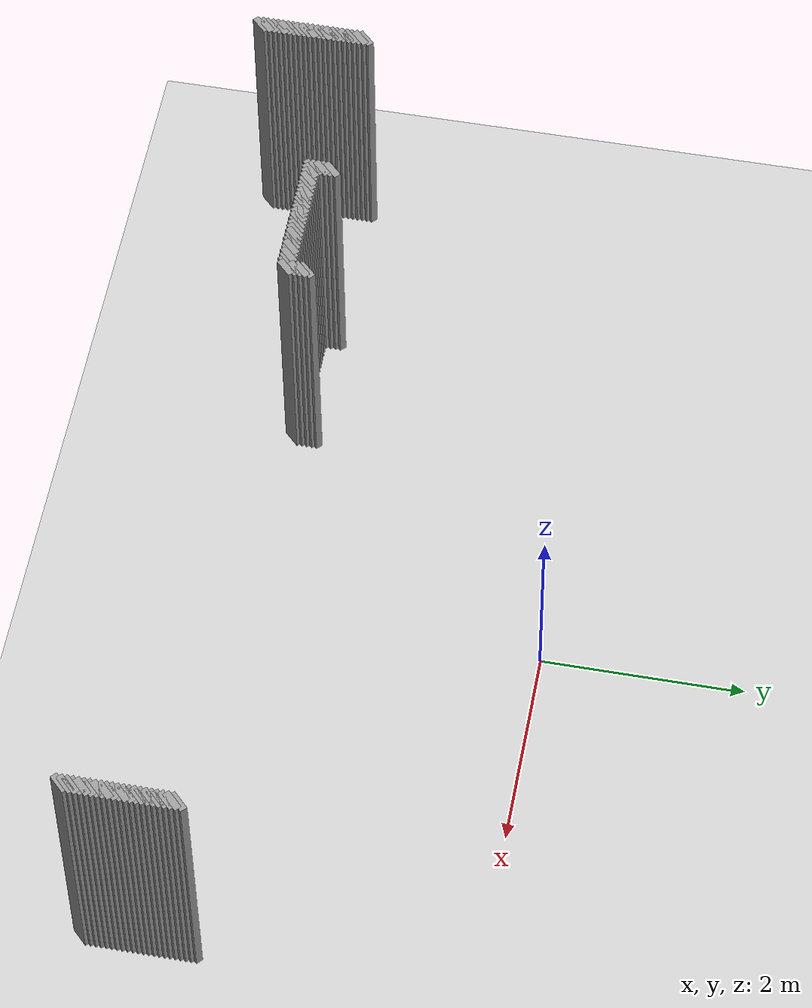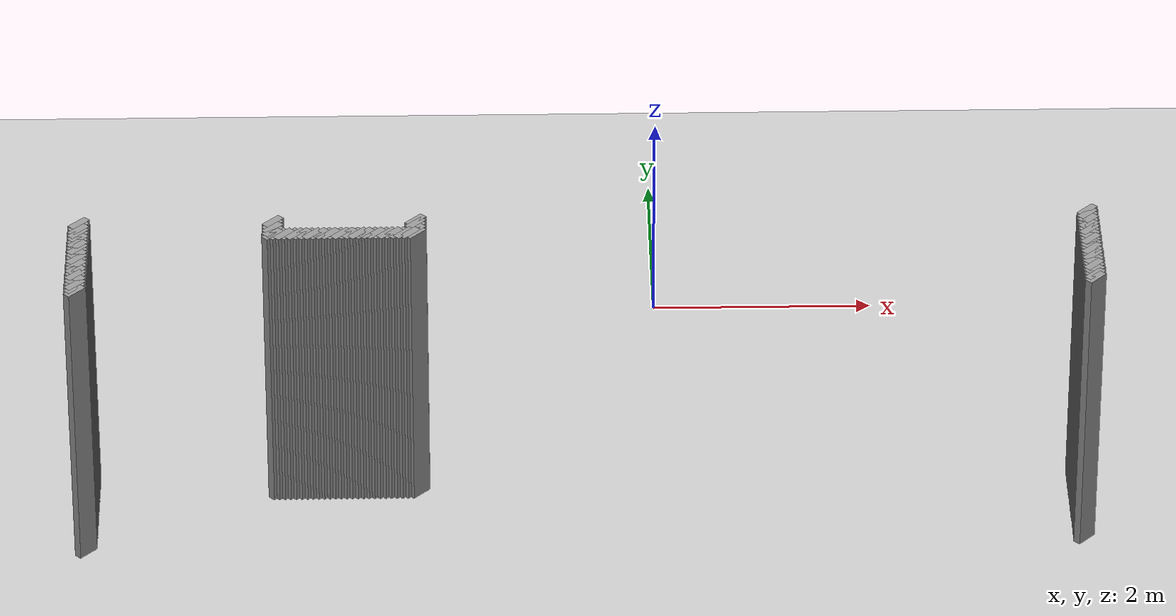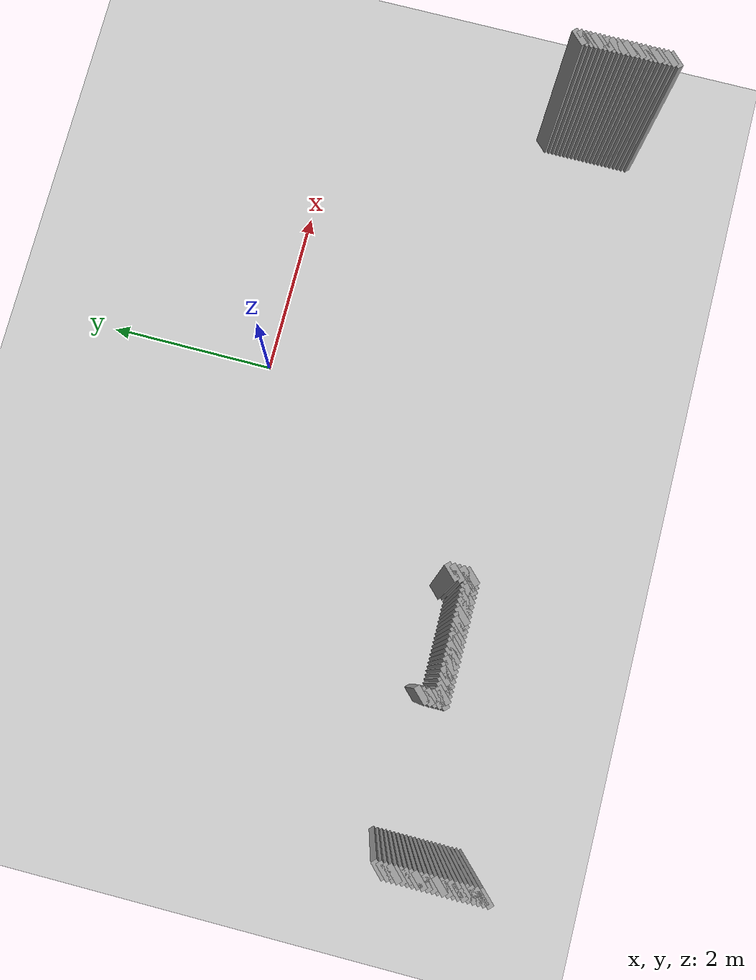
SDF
<sdf version="1.5">
 <world name="default">
  <include><uri>model://ground_plane</uri></include>
  <include><uri>model://sun</uri></include>
  <model name="grey_wall_1100">
   <static>1</static>
   <link name="link">
    <pose>3.725 -2.625  1.4 0 0 -0.785398163397</pose>
    <collision name="collision"><geometry><box><size>0.0707106781187 .2  2.8</size></box></geometry></collision>
    <visual name="visual">
     <cast_shadows>0</cast_shadows>
     <geometry><box><size>0.0707106781187 .2  2.8</size></box></geometry>
     <material>
      <script>
       <uri>model://grey_wall/materials/scripts</uri>
       <uri>model://grey_wall/materials/textures</uri>
       <name>vrc/grey_wall</name>
      </script>
     </material>
    </visual>
   </link>
  </model>
  <model name="grey_wall_1101">
   <static>1</static>
   <link name="link">
    <pose>-5.125 -2.675  1.4 0 0 -0.785398163397</pose>
    <collision name="collision"><geometry><box><size>0.0707106781187 .2  2.8</size></box></geometry></collision>
    <visual name="visual">
     <cast_shadows>0</cast_shadows>
     <geometry><box><size>0.0707106781187 .2  2.8</size></box></geometry>
     <material>
      <script>
       <uri>model://grey_wall/materials/scripts</uri>
       <uri>model://grey_wall/materials/textures</uri>
       <name>vrc/grey_wall</name>
      </script>
     </material>
    </visual>
   </link>
  </model>
  <model name="grey_wall_1102">
   <static>1</static>
   <link name="link">
    <pose>-3.425 -2.675  1.4 0 0 -0.785398163397</pose>
    <collision name="collision"><geometry><box><size>0.0707106781187 .2  2.8</size></box></geometry></collision>
    <visual name="visual">
     <cast_shadows>0</cast_shadows>
     <geometry><box><size>0.0707106781187 .2  2.8</size></box></geometry>
     <material>
      <script>
       <uri>model://grey_wall/materials/scripts</uri>
       <uri>model://grey_wall/materials/textures</uri>
       <name>vrc/grey_wall</name>
      </script>
     </material>
    </visual>
   </link>
  </model>
  <model name="grey_wall_1103">
   <static>1</static>
   <link name="link">
    <pose>-2.175 -2.675  1.4 0 0 -0.785398163397</pose>
    <collision name="collision"><geometry><box><size>0.0707106781187 .2  2.8</size></box></geometry></collision>
    <visual name="visual">
     <cast_shadows>0</cast_shadows>
     <geometry><box><size>0.0707106781187 .2  2.8</size></box></geometry>
     <material>
      <script>
       <uri>model://grey_wall/materials/scripts</uri>
       <uri>model://grey_wall/materials/textures</uri>
       <name>vrc/grey_wall</name>
      </script>
     </material>
    </visual>
   </link>
  </model>
  <model name="grey_wall_1104">
   <static>1</static>
   <link name="link">
    <pose>3.725 -2.675  1.4 0 0 -0.785398163397</pose>
    <collision name="collision"><geometry><box><size>0.0707106781187 .2  2.8</size></box></geometry></collision>
    <visual name="visual">
     <cast_shadows>0</cast_shadows>
     <geometry><box><size>0.0707106781187 .2  2.8</size></box></geometry>
     <material>
      <script>
       <uri>model://grey_wall/materials/scripts</uri>
       <uri>model://grey_wall/materials/textures</uri>
       <name>vrc/grey_wall</name>
      </script>
     </material>
    </visual>
   </link>
  </model>
  <model name="grey_wall_1105">
   <static>1</static>
   <link name="link">
    <pose>-5.125 -2.725  1.4 0 0 -0.785398163397</pose>
    <collision name="collision"><geometry><box><size>0.0707106781187 .2  2.8</size></box></geometry></collision>
    <visual name="visual">
     <cast_shadows>0</cast_shadows>
     <geometry><box><size>0.0707106781187 .2  2.8</size></box></geometry>
     <material>
      <script>
       <uri>model://grey_wall/materials/scripts</uri>
       <uri>model://grey_wall/materials/textures</uri>
       <name>vrc/grey_wall</name>
      </script>
     </material>
    </visual>
   </link>
  </model>
  <model name="grey_wall_1106">
   <static>1</static>
   <link name="link">
    <pose>-3.425 -2.725  1.4 0 0 -0.785398163397</pose>
    <collision name="collision"><geometry><box><size>0.0707106781187 .2  2.8</size></box></geometry></collision>
    <visual name="visual">
     <cast_shadows>0</cast_shadows>
     <geometry><box><size>0.0707106781187 .2  2.8</size></box></geometry>
     <material>
      <script>
       <uri>model://grey_wall/materials/scripts</uri>
       <uri>model://grey_wall/materials/textures</uri>
       <name>vrc/grey_wall</name>
      </script>
     </material>
    </visual>
   </link>
  </model>
  <model name="grey_wall_1107">
   <static>1</static>
   <link name="link">
    <pose>-2.175 -2.725  1.4 0 0 -0.785398163397</pose>
    <collision name="collision"><geometry><box><size>0.0707106781187 .2  2.8</size></box></geometry></collision>
    <visual name="visual">
     <cast_shadows>0</cast_shadows>
     <geometry><box><size>0.0707106781187 .2  2.8</size></box></geometry>
     <material>
      <script>
       <uri>model://grey_wall/materials/scripts</uri>
       <uri>model://grey_wall/materials/textures</uri>
       <name>vrc/grey_wall</name>
      </script>
     </material>
    </visual>
   </link>
  </model>
  <model name="grey_wall_1108">
   <static>1</static>
   <link name="link">
    <pose>3.725 -2.725  1.4 0 0 -0.785398163397</pose>
    <collision name="collision"><geometry><box><size>0.0707106781187 .2  2.8</size></box></geometry></collision>
    <visual name="visual">
     <cast_shadows>0</cast_shadows>
     <geometry><box><size>0.0707106781187 .2  2.8</size></box></geometry>
     <material>
      <script>
       <uri>model://grey_wall/materials/scripts</uri>
       <uri>model://grey_wall/materials/textures</uri>
       <name>vrc/grey_wall</name>
      </script>
     </material>
    </visual>
   </link>
  </model>
  <model name="grey_wall_1109">
   <static>1</static>
   <link name="link">
    <pose>-5.125 -2.775  1.4 0 0 -0.785398163397</pose>
    <collision name="collision"><geometry><box><size>0.0707106781187 .2  2.8</size></box></geometry></collision>
    <visual name="visual">
     <cast_shadows>0</cast_shadows>
     <geometry><box><size>0.0707106781187 .2  2.8</size></box></geometry>
     <material>
      <script>
       <uri>model://grey_wall/materials/scripts</uri>
       <uri>model://grey_wall/materials/textures</uri>
       <name>vrc/grey_wall</name>
      </script>
     </material>
    </visual>
   </link>
  </model>
  <model name="grey_wall_1110">
   <static>1</static>
   <link name="link">
    <pose>-3.425 -2.775  1.4 0 0 -0.785398163397</pose>
    <collision name="collision"><geometry><box><size>0.0707106781187 .2  2.8</size></box></geometry></collision>
    <visual name="visual">
     <cast_shadows>0</cast_shadows>
     <geometry><box><size>0.0707106781187 .2  2.8</size></box></geometry>
     <material>
      <script>
       <uri>model://grey_wall/materials/scripts</uri>
       <uri>model://grey_wall/materials/textures</uri>
       <name>vrc/grey_wall</name>
      </script>
     </material>
    </visual>
   </link>
  </model>
  <model name="grey_wall_1111">
   <static>1</static>
   <link name="link">
    <pose>-2.175 -2.775  1.4 0 0 -0.785398163397</pose>
    <collision name="collision"><geometry><box><size>0.0707106781187 .2  2.8</size></box></geometry></collision>
    <visual name="visual">
     <cast_shadows>0</cast_shadows>
     <geometry><box><size>0.0707106781187 .2  2.8</size></box></geometry>
     <material>
      <script>
       <uri>model://grey_wall/materials/scripts</uri>
       <uri>model://grey_wall/materials/textures</uri>
       <name>vrc/grey_wall</name>
      </script>
     </material>
    </visual>
   </link>
  </model>
  <model name="grey_wall_1112">
   <static>1</static>
   <link name="link">
    <pose>3.725 -2.775  1.4 0 0 -0.785398163397</pose>
    <collision name="collision"><geometry><box><size>0.0707106781187 .2  2.8</size></box></geometry></collision>
    <visual name="visual">
     <cast_shadows>0</cast_shadows>
     <geometry><box><size>0.0707106781187 .2  2.8</size></box></geometry>
     <material>
      <script>
       <uri>model://grey_wall/materials/scripts</uri>
       <uri>model://grey_wall/materials/textures</uri>
       <name>vrc/grey_wall</name>
      </script>
     </material>
    </visual>
   </link>
  </model>
  <model name="grey_wall_1113">
   <static>1</static>
   <link name="link">
    <pose>-5.125 -2.825  1.4 0 0 -0.785398163397</pose>
    <collision name="collision"><geometry><box><size>0.0707106781187 .2  2.8</size></box></geometry></collision>
    <visual name="visual">
     <cast_shadows>0</cast_shadows>
     <geometry><box><size>0.0707106781187 .2  2.8</size></box></geometry>
     <material>
      <script>
       <uri>model://grey_wall/materials/scripts</uri>
       <uri>model://grey_wall/materials/textures</uri>
       <name>vrc/grey_wall</name>
      </script>
     </material>
    </visual>
   </link>
  </model>
  <model name="grey_wall_1114">
   <static>1</static>
   <link name="link">
    <pose>-3.425 -2.825  1.4 0 0 -0.785398163397</pose>
    <collision name="collision"><geometry><box><size>0.0707106781187 .2  2.8</size></box></geometry></collision>
    <visual name="visual">
     <cast_shadows>0</cast_shadows>
     <geometry><box><size>0.0707106781187 .2  2.8</size></box></geometry>
     <material>
      <script>
       <uri>model://grey_wall/materials/scripts</uri>
       <uri>model://grey_wall/materials/textures</uri>
       <name>vrc/grey_wall</name>
      </script>
     </material>
    </visual>
   </link>
  </model>
  <model name="grey_wall_1115">
   <static>1</static>
   <link name="link">
    <pose>-2.175 -2.825  1.4 0 0 -0.785398163397</pose>
    <collision name="collision"><geometry><box><size>0.0707106781187 .2  2.8</size></box></geometry></collision>
    <visual name="visual">
     <cast_shadows>0</cast_shadows>
     <geometry><box><size>0.0707106781187 .2  2.8</size></box></geometry>
     <material>
      <script>
       <uri>model://grey_wall/materials/scripts</uri>
       <uri>model://grey_wall/materials/textures</uri>
       <name>vrc/grey_wall</name>
      </script>
     </material>
    </visual>
   </link>
  </model>
  <model name="grey_wall_1116">
   <static>1</static>
   <link name="link">
    <pose>3.725 -2.825  1.4 0 0 -0.785398163397</pose>
    <collision name="collision"><geometry><box><size>0.0707106781187 .2  2.8</size></box></geometry></collision>
    <visual name="visual">
     <cast_shadows>0</cast_shadows>
     <geometry><box><size>0.0707106781187 .2  2.8</size></box></geometry>
     <material>
      <script>
       <uri>model://grey_wall/materials/scripts</uri>
       <uri>model://grey_wall/materials/textures</uri>
       <name>vrc/grey_wall</name>
      </script>
     </material>
    </visual>
   </link>
  </model>
  <model name="grey_wall_1117">
   <static>1</static>
   <link name="link">
    <pose>-5.125 -2.875  1.4 0 0 -0.785398163397</pose>
    <collision name="collision"><geometry><box><size>0.0707106781187 .2  2.8</size></box></geometry></collision>
    <visual name="visual">
     <cast_shadows>0</cast_shadows>
     <geometry><box><size>0.0707106781187 .2  2.8</size></box></geometry>
     <material>
      <script>
       <uri>model://grey_wall/materials/scripts</uri>
       <uri>model://grey_wall/materials/textures</uri>
       <name>vrc/grey_wall</name>
      </script>
     </material>
    </visual>
   </link>
  </model>
  <model name="grey_wall_1118">
   <static>1</static>
   <link name="link">
    <pose>-3.425 -2.875  1.4 0 0 -0.785398163397</pose>
    <collision name="collision"><geometry><box><size>0.0707106781187 .2  2.8</size></box></geometry></collision>
    <visual name="visual">
     <cast_shadows>0</cast_shadows>
     <geometry><box><size>0.0707106781187 .2  2.8</size></box></geometry>
     <material>
      <script>
       <uri>model://grey_wall/materials/scripts</uri>
       <uri>model://grey_wall/materials/textures</uri>
       <name>vrc/grey_wall</name>
      </script>
     </material>
    </visual>
   </link>
  </model>
  <model name="grey_wall_1119">
   <static>1</static>
   <link name="link">
    <pose>-3.375 -2.875  1.4 0 0 -0.785398163397</pose>
    <collision name="collision"><geometry><box><size>0.0707106781187 .2  2.8</size></box></geometry></collision>
    <visual name="visual">
     <cast_shadows>0</cast_shadows>
     <geometry><box><size>0.0707106781187 .2  2.8</size></box></geometry>
     <material>
      <script>
       <uri>model://grey_wall/materials/scripts</uri>
       <uri>model://grey_wall/materials/textures</uri>
       <name>vrc/grey_wall</name>
      </script>
     </material>
    </visual>
   </link>
  </model>
  <model name="grey_wall_1120">
   <static>1</static>
   <link name="link">
    <pose>-3.325 -2.875  1.4 0 0 -0.785398163397</pose>
    <collision name="collision"><geometry><box><size>0.0707106781187 .2  2.8</size></box></geometry></collision>
    <visual name="visual">
     <cast_shadows>0</cast_shadows>
     <geometry><box><size>0.0707106781187 .2  2.8</size></box></geometry>
     <material>
      <script>
       <uri>model://grey_wall/materials/scripts</uri>
       <uri>model://grey_wall/materials/textures</uri>
       <name>vrc/grey_wall</name>
      </script>
     </material>
    </visual>
   </link>
  </model>
  <model name="grey_wall_1121">
   <static>1</static>
   <link name="link">
    <pose>-3.275 -2.875  1.4 0 0 -0.785398163397</pose>
    <collision name="collision"><geometry><box><size>0.0707106781187 .2  2.8</size></box></geometry></collision>
    <visual name="visual">
     <cast_shadows>0</cast_shadows>
     <geometry><box><size>0.0707106781187 .2  2.8</size></box></geometry>
     <material>
      <script>
       <uri>model://grey_wall/materials/scripts</uri>
       <uri>model://grey_wall/materials/textures</uri>
       <name>vrc/grey_wall</name>
      </script>
     </material>
    </visual>
   </link>
  </model>
  <model name="grey_wall_1122">
   <static>1</static>
   <link name="link">
    <pose>-3.225 -2.875  1.4 0 0 -0.785398163397</pose>
    <collision name="collision"><geometry><box><size>0.0707106781187 .2  2.8</size></box></geometry></collision>
    <visual name="visual">
     <cast_shadows>0</cast_shadows>
     <geometry><box><size>0.0707106781187 .2  2.8</size></box></geometry>
     <material>
      <script>
       <uri>model://grey_wall/materials/scripts</uri>
       <uri>model://grey_wall/materials/textures</uri>
       <name>vrc/grey_wall</name>
      </script>
     </material>
    </visual>
   </link>
  </model>
  <model name="grey_wall_1123">
   <static>1</static>
   <link name="link">
    <pose>-3.175 -2.875  1.4 0 0 -0.785398163397</pose>
    <collision name="collision"><geometry><box><size>0.0707106781187 .2  2.8</size></box></geometry></collision>
    <visual name="visual">
     <cast_shadows>0</cast_shadows>
     <geometry><box><size>0.0707106781187 .2  2.8</size></box></geometry>
     <material>
      <script>
       <uri>model://grey_wall/materials/scripts</uri>
       <uri>model://grey_wall/materials/textures</uri>
       <name>vrc/grey_wall</name>
      </script>
     </material>
    </visual>
   </link>
  </model>
  <model name="grey_wall_1124">
   <static>1</static>
   <link name="link">
    <pose>-3.125 -2.875  1.4 0 0 -0.785398163397</pose>
    <collision name="collision"><geometry><box><size>0.0707106781187 .2  2.8</size></box></geometry></collision>
    <visual name="visual">
     <cast_shadows>0</cast_shadows>
     <geometry><box><size>0.0707106781187 .2  2.8</size></box></geometry>
     <material>
      <script>
       <uri>model://grey_wall/materials/scripts</uri>
       <uri>model://grey_wall/materials/textures</uri>
       <name>vrc/grey_wall</name>
      </script>
     </material>
    </visual>
   </link>
  </model>
  <model name="grey_wall_1125">
   <static>1</static>
   <link name="link">
    <pose>-3.075 -2.875  1.4 0 0 -0.785398163397</pose>
    <collision name="collision"><geometry><box><size>0.0707106781187 .2  2.8</size></box></geometry></collision>
    <visual name="visual">
     <cast_shadows>0</cast_shadows>
     <geometry><box><size>0.0707106781187 .2  2.8</size></box></geometry>
     <material>
      <script>
       <uri>model://grey_wall/materials/scripts</uri>
       <uri>model://grey_wall/materials/textures</uri>
       <name>vrc/grey_wall</name>
      </script>
     </material>
    </visual>
   </link>
  </model>
  <model name="grey_wall_1126">
   <static>1</static>
   <link name="link">
    <pose>-3.025 -2.875  1.4 0 0 -0.785398163397</pose>
    <collision name="collision"><geometry><box><size>0.0707106781187 .2  2.8</size></box></geometry></collision>
    <visual name="visual">
     <cast_shadows>0</cast_shadows>
     <geometry><box><size>0.0707106781187 .2  2.8</size></box></geometry>
     <material>
      <script>
       <uri>model://grey_wall/materials/scripts</uri>
       <uri>model://grey_wall/materials/textures</uri>
       <name>vrc/grey_wall</name>
      </script>
     </material>
    </visual>
   </link>
  </model>
  <model name="grey_wall_1127">
   <static>1</static>
   <link name="link">
    <pose>-2.975 -2.875  1.4 0 0 -0.785398163397</pose>
    <collision name="collision"><geometry><box><size>0.0707106781187 .2  2.8</size></box></geometry></collision>
    <visual name="visual">
     <cast_shadows>0</cast_shadows>
     <geometry><box><size>0.0707106781187 .2  2.8</size></box></geometry>
     <material>
      <script>
       <uri>model://grey_wall/materials/scripts</uri>
       <uri>model://grey_wall/materials/textures</uri>
       <name>vrc/grey_wall</name>
      </script>
     </material>
    </visual>
   </link>
  </model>
  <model name="grey_wall_1128">
   <static>1</static>
   <link name="link">
    <pose>-2.925 -2.875  1.4 0 0 -0.785398163397</pose>
    <collision name="collision"><geometry><box><size>0.0707106781187 .2  2.8</size></box></geometry></collision>
    <visual name="visual">
     <cast_shadows>0</cast_shadows>
     <geometry><box><size>0.0707106781187 .2  2.8</size></box></geometry>
     <material>
      <script>
       <uri>model://grey_wall/materials/scripts</uri>
       <uri>model://grey_wall/materials/textures</uri>
       <name>vrc/grey_wall</name>
      </script>
     </material>
    </visual>
   </link>
  </model>
  <model name="grey_wall_1129">
   <static>1</static>
   <link name="link">
    <pose>-2.875 -2.875  1.4 0 0 -0.785398163397</pose>
    <collision name="collision"><geometry><box><size>0.0707106781187 .2  2.8</size></box></geometry></collision>
    <visual name="visual">
     <cast_shadows>0</cast_shadows>
     <geometry><box><size>0.0707106781187 .2  2.8</size></box></geometry>
     <material>
      <script>
       <uri>model://grey_wall/materials/scripts</uri>
       <uri>model://grey_wall/materials/textures</uri>
       <name>vrc/grey_wall</name>
      </script>
     </material>
    </visual>
   </link>
  </model>
  <model name="grey_wall_1130">
   <static>1</static>
   <link name="link">
    <pose>-2.825 -2.875  1.4 0 0 -0.785398163397</pose>
    <collision name="collision"><geometry><box><size>0.0707106781187 .2  2.8</size></box></geometry></collision>
    <visual name="visual">
     <cast_shadows>0</cast_shadows>
     <geometry><box><size>0.0707106781187 .2  2.8</size></box></geometry>
     <material>
      <script>
       <uri>model://grey_wall/materials/scripts</uri>
       <uri>model://grey_wall/materials/textures</uri>
       <name>vrc/grey_wall</name>
      </script>
     </material>
    </visual>
   </link>
  </model>
  <model name="grey_wall_1131">
   <static>1</static>
   <link name="link">
    <pose>-2.775 -2.875  1.4 0 0 -0.785398163397</pose>
    <collision name="collision"><geometry><box><size>0.0707106781187 .2  2.8</size></box></geometry></collision>
    <visual name="visual">
     <cast_shadows>0</cast_shadows>
     <geometry><box><size>0.0707106781187 .2  2.8</size></box></geometry>
     <material>
      <script>
       <uri>model://grey_wall/materials/scripts</uri>
       <uri>model://grey_wall/materials/textures</uri>
       <name>vrc/grey_wall</name>
      </script>
     </material>
    </visual>
   </link>
  </model>
  <model name="grey_wall_1132">
   <static>1</static>
   <link name="link">
    <pose>-2.725 -2.875  1.4 0 0 -0.785398163397</pose>
    <collision name="collision"><geometry><box><size>0.0707106781187 .2  2.8</size></box></geometry></collision>
    <visual name="visual">
     <cast_shadows>0</cast_shadows>
     <geometry><box><size>0.0707106781187 .2  2.8</size></box></geometry>
     <material>
      <script>
       <uri>model://grey_wall/materials/scripts</uri>
       <uri>model://grey_wall/materials/textures</uri>
       <name>vrc/grey_wall</name>
      </script>
     </material>
    </visual>
   </link>
  </model>
  <model name="grey_wall_1133">
   <static>1</static>
   <link name="link">
    <pose>-2.675 -2.875  1.4 0 0 -0.785398163397</pose>
    <collision name="collision"><geometry><box><size>0.0707106781187 .2  2.8</size></box></geometry></collision>
    <visual name="visual">
     <cast_shadows>0</cast_shadows>
     <geometry><box><size>0.0707106781187 .2  2.8</size></box></geometry>
     <material>
      <script>
       <uri>model://grey_wall/materials/scripts</uri>
       <uri>model://grey_wall/materials/textures</uri>
       <name>vrc/grey_wall</name>
      </script>
     </material>
    </visual>
   </link>
  </model>
  <model name="grey_wall_1134">
   <static>1</static>
   <link name="link">
    <pose>-2.625 -2.875  1.4 0 0 -0.785398163397</pose>
    <collision name="collision"><geometry><box><size>0.0707106781187 .2  2.8</size></box></geometry></collision>
    <visual name="visual">
     <cast_shadows>0</cast_shadows>
     <geometry><box><size>0.0707106781187 .2  2.8</size></box></geometry>
     <material>
      <script>
       <uri>model://grey_wall/materials/scripts</uri>
       <uri>model://grey_wall/materials/textures</uri>
       <name>vrc/grey_wall</name>
      </script>
     </material>
    </visual>
   </link>
  </model>
  <model name="grey_wall_1135">
   <static>1</static>
   <link name="link">
    <pose>-2.575 -2.875  1.4 0 0 -0.785398163397</pose>
    <collision name="collision"><geometry><box><size>0.0707106781187 .2  2.8</size></box></geometry></collision>
    <visual name="visual">
     <cast_shadows>0</cast_shadows>
     <geometry><box><size>0.0707106781187 .2  2.8</size></box></geometry>
     <material>
      <script>
       <uri>model://grey_wall/materials/scripts</uri>
       <uri>model://grey_wall/materials/textures</uri>
       <name>vrc/grey_wall</name>
      </script>
     </material>
    </visual>
   </link>
  </model>
  <model name="grey_wall_1136">
   <static>1</static>
   <link name="link">
    <pose>-2.525 -2.875  1.4 0 0 -0.785398163397</pose>
    <collision name="collision"><geometry><box><size>0.0707106781187 .2  2.8</size></box></geometry></collision>
    <visual name="visual">
     <cast_shadows>0</cast_shadows>
     <geometry><box><size>0.0707106781187 .2  2.8</size></box></geometry>
     <material>
      <script>
       <uri>model://grey_wall/materials/scripts</uri>
       <uri>model://grey_wall/materials/textures</uri>
       <name>vrc/grey_wall</name>
      </script>
     </material>
    </visual>
   </link>
  </model>
  <model name="grey_wall_1137">
   <static>1</static>
   <link name="link">
    <pose>-2.475 -2.875  1.4 0 0 -0.785398163397</pose>
    <collision name="collision"><geometry><box><size>0.0707106781187 .2  2.8</size></box></geometry></collision>
    <visual name="visual">
     <cast_shadows>0</cast_shadows>
     <geometry><box><size>0.0707106781187 .2  2.8</size></box></geometry>
     <material>
      <script>
       <uri>model://grey_wall/materials/scripts</uri>
       <uri>model://grey_wall/materials/textures</uri>
       <name>vrc/grey_wall</name>
      </script>
     </material>
    </visual>
   </link>
  </model>
  <model name="grey_wall_1138">
   <static>1</static>
   <link name="link">
    <pose>-2.425 -2.875  1.4 0 0 -0.785398163397</pose>
    <collision name="collision"><geometry><box><size>0.0707106781187 .2  2.8</size></box></geometry></collision>
    <visual name="visual">
     <cast_shadows>0</cast_shadows>
     <geometry><box><size>0.0707106781187 .2  2.8</size></box></geometry>
     <material>
      <script>
       <uri>model://grey_wall/materials/scripts</uri>
       <uri>model://grey_wall/materials/textures</uri>
       <name>vrc/grey_wall</name>
      </script>
     </material>
    </visual>
   </link>
  </model>
  <model name="grey_wall_1139">
   <static>1</static>
   <link name="link">
    <pose>-2.375 -2.875  1.4 0 0 -0.785398163397</pose>
    <collision name="collision"><geometry><box><size>0.0707106781187 .2  2.8</size></box></geometry></collision>
    <visual name="visual">
     <cast_shadows>0</cast_shadows>
     <geometry><box><size>0.0707106781187 .2  2.8</size></box></geometry>
     <material>
      <script>
       <uri>model://grey_wall/materials/scripts</uri>
       <uri>model://grey_wall/materials/textures</uri>
       <name>vrc/grey_wall</name>
      </script>
     </material>
    </visual>
   </link>
  </model>
  <model name="grey_wall_1140">
   <static>1</static>
   <link name="link">
    <pose>-2.325 -2.875  1.4 0 0 -0.785398163397</pose>
    <collision name="collision"><geometry><box><size>0.0707106781187 .2  2.8</size></box></geometry></collision>
    <visual name="visual">
     <cast_shadows>0</cast_shadows>
     <geometry><box><size>0.0707106781187 .2  2.8</size></box></geometry>
     <material>
      <script>
       <uri>model://grey_wall/materials/scripts</uri>
       <uri>model://grey_wall/materials/textures</uri>
       <name>vrc/grey_wall</name>
      </script>
     </material>
    </visual>
   </link>
  </model>
  <model name="grey_wall_1141">
   <static>1</static>
   <link name="link">
    <pose>-2.275 -2.875  1.4 0 0 -0.785398163397</pose>
    <collision name="collision"><geometry><box><size>0.0707106781187 .2  2.8</size></box></geometry></collision>
    <visual name="visual">
     <cast_shadows>0</cast_shadows>
     <geometry><box><size>0.0707106781187 .2  2.8</size></box></geometry>
     <material>
      <script>
       <uri>model://grey_wall/materials/scripts</uri>
       <uri>model://grey_wall/materials/textures</uri>
       <name>vrc/grey_wall</name>
      </script>
     </material>
    </visual>
   </link>
  </model>
  <model name="grey_wall_1142">
   <static>1</static>
   <link name="link">
    <pose>-2.225 -2.875  1.4 0 0 -0.785398163397</pose>
    <collision name="collision"><geometry><box><size>0.0707106781187 .2  2.8</size></box></geometry></collision>
    <visual name="visual">
     <cast_shadows>0</cast_shadows>
     <geometry><box><size>0.0707106781187 .2  2.8</size></box></geometry>
     <material>
      <script>
       <uri>model://grey_wall/materials/scripts</uri>
       <uri>model://grey_wall/materials/textures</uri>
       <name>vrc/grey_wall</name>
      </script>
     </material>
    </visual>
   </link>
  </model>
  <model name="grey_wall_1143">
   <static>1</static>
   <link name="link">
    <pose>-2.175 -2.875  1.4 0 0 -0.785398163397</pose>
    <collision name="collision"><geometry><box><size>0.0707106781187 .2  2.8</size></box></geometry></collision>
    <visual name="visual">
     <cast_shadows>0</cast_shadows>
     <geometry><box><size>0.0707106781187 .2  2.8</size></box></geometry>
     <material>
      <script>
       <uri>model://grey_wall/materials/scripts</uri>
       <uri>model://grey_wall/materials/textures</uri>
       <name>vrc/grey_wall</name>
      </script>
     </material>
    </visual>
   </link>
  </model>
  <model name="grey_wall_1144">
   <static>1</static>
   <link name="link">
    <pose>3.725 -2.875  1.4 0 0 -0.785398163397</pose>
    <collision name="collision"><geometry><box><size>0.0707106781187 .2  2.8</size></box></geometry></collision>
    <visual name="visual">
     <cast_shadows>0</cast_shadows>
     <geometry><box><size>0.0707106781187 .2  2.8</size></box></geometry>
     <material>
      <script>
       <uri>model://grey_wall/materials/scripts</uri>
       <uri>model://grey_wall/materials/textures</uri>
       <name>vrc/grey_wall</name>
      </script>
     </material>
    </visual>
   </link>
  </model>
  <model name="grey_wall_1145">
   <static>1</static>
   <link name="link">
    <pose>-5.125 -2.925  1.4 0 0 -0.785398163397</pose>
    <collision name="collision"><geometry><box><size>0.0707106781187 .2  2.8</size></box></geometry></collision>
    <visual name="visual">
     <cast_shadows>0</cast_shadows>
     <geometry><box><size>0.0707106781187 .2  2.8</size></box></geometry>
     <material>
      <script>
       <uri>model://grey_wall/materials/scripts</uri>
       <uri>model://grey_wall/materials/textures</uri>
       <name>vrc/grey_wall</name>
      </script>
     </material>
    </visual>
   </link>
  </model>
  <model name="grey_wall_1146">
   <static>1</static>
   <link name="link">
    <pose>3.725 -2.925  1.4 0 0 -0.785398163397</pose>
    <collision name="collision"><geometry><box><size>0.0707106781187 .2  2.8</size></box></geometry></collision>
    <visual name="visual">
     <cast_shadows>0</cast_shadows>
     <geometry><box><size>0.0707106781187 .2  2.8</size></box></geometry>
     <material>
      <script>
       <uri>model://grey_wall/materials/scripts</uri>
       <uri>model://grey_wall/materials/textures</uri>
       <name>vrc/grey_wall</name>
      </script>
     </material>
    </visual>
   </link>
  </model>
  <model name="grey_wall_1147">
   <static>1</static>
   <link name="link">
    <pose>-5.125 -2.975  1.4 0 0 -0.785398163397</pose>
    <collision name="collision"><geometry><box><size>0.0707106781187 .2  2.8</size></box></geometry></collision>
    <visual name="visual">
     <cast_shadows>0</cast_shadows>
     <geometry><box><size>0.0707106781187 .2  2.8</size></box></geometry>
     <material>
      <script>
       <uri>model://grey_wall/materials/scripts</uri>
       <uri>model://grey_wall/materials/textures</uri>
       <name>vrc/grey_wall</name>
      </script>
     </material>
    </visual>
   </link>
  </model>
  <model name="grey_wall_1148">
   <static>1</static>
   <link name="link">
    <pose>3.725 -2.975  1.4 0 0 -0.785398163397</pose>
    <collision name="collision"><geometry><box><size>0.0707106781187 .2  2.8</size></box></geometry></collision>
    <visual name="visual">
     <cast_shadows>0</cast_shadows>
     <geometry><box><size>0.0707106781187 .2  2.8</size></box></geometry>
     <material>
      <script>
       <uri>model://grey_wall/materials/scripts</uri>
       <uri>model://grey_wall/materials/textures</uri>
       <name>vrc/grey_wall</name>
      </script>
     </material>
    </visual>
   </link>
  </model>
  <model name="grey_wall_1149">
   <static>1</static>
   <link name="link">
    <pose>-5.125 -3.025  1.4 0 0 -0.785398163397</pose>
    <collision name="collision"><geometry><box><size>0.0707106781187 .2  2.8</size></box></geometry></collision>
    <visual name="visual">
     <cast_shadows>0</cast_shadows>
     <geometry><box><size>0.0707106781187 .2  2.8</size></box></geometry>
     <material>
      <script>
       <uri>model://grey_wall/materials/scripts</uri>
       <uri>model://grey_wall/materials/textures</uri>
       <name>vrc/grey_wall</name>
      </script>
     </material>
    </visual>
   </link>
  </model>
  <model name="grey_wall_1150">
   <static>1</static>
   <link name="link">
    <pose>3.725 -3.025  1.4 0 0 -0.785398163397</pose>
    <collision name="collision"><geometry><box><size>0.0707106781187 .2  2.8</size></box></geometry></collision>
    <visual name="visual">
     <cast_shadows>0</cast_shadows>
     <geometry><box><size>0.0707106781187 .2  2.8</size></box></geometry>
     <material>
      <script>
       <uri>model://grey_wall/materials/scripts</uri>
       <uri>model://grey_wall/materials/textures</uri>
       <name>vrc/grey_wall</name>
      </script>
     </material>
    </visual>
   </link>
  </model>
  <model name="grey_wall_1151">
   <static>1</static>
   <link name="link">
    <pose>-5.125 -3.075  1.4 0 0 -0.785398163397</pose>
    <collision name="collision"><geometry><box><size>0.0707106781187 .2  2.8</size></box></geometry></collision>
    <visual name="visual">
     <cast_shadows>0</cast_shadows>
     <geometry><box><size>0.0707106781187 .2  2.8</size></box></geometry>
     <material>
      <script>
       <uri>model://grey_wall/materials/scripts</uri>
       <uri>model://grey_wall/materials/textures</uri>
       <name>vrc/grey_wall</name>
      </script>
     </material>
    </visual>
   </link>
  </model>
  <model name="grey_wall_1152">
   <static>1</static>
   <link name="link">
    <pose>3.725 -3.075  1.4 0 0 -0.785398163397</pose>
    <collision name="collision"><geometry><box><size>0.0707106781187 .2  2.8</size></box></geometry></collision>
    <visual name="visual">
     <cast_shadows>0</cast_shadows>
     <geometry><box><size>0.0707106781187 .2  2.8</size></box></geometry>
     <material>
      <script>
       <uri>model://grey_wall/materials/scripts</uri>
       <uri>model://grey_wall/materials/textures</uri>
       <name>vrc/grey_wall</name>
      </script>
     </material>
    </visual>
   </link>
  </model>
  <model name="grey_wall_1153">
   <static>1</static>
   <link name="link">
    <pose>-5.125 -3.125  1.4 0 0 -0.785398163397</pose>
    <collision name="collision"><geometry><box><size>0.0707106781187 .2  2.8</size></box></geometry></collision>
    <visual name="visual">
     <cast_shadows>0</cast_shadows>
     <geometry><box><size>0.0707106781187 .2  2.8</size></box></geometry>
     <material>
      <script>
       <uri>model://grey_wall/materials/scripts</uri>
       <uri>model://grey_wall/materials/textures</uri>
       <name>vrc/grey_wall</name>
      </script>
     </material>
    </visual>
   </link>
  </model>
  <model name="grey_wall_1154">
   <static>1</static>
   <link name="link">
    <pose>3.725 -3.125  1.4 0 0 -0.785398163397</pose>
    <collision name="collision"><geometry><box><size>0.0707106781187 .2  2.8</size></box></geometry></collision>
    <visual name="visual">
     <cast_shadows>0</cast_shadows>
     <geometry><box><size>0.0707106781187 .2  2.8</size></box></geometry>
     <material>
      <script>
       <uri>model://grey_wall/materials/scripts</uri>
       <uri>model://grey_wall/materials/textures</uri>
       <name>vrc/grey_wall</name>
      </script>
     </material>
    </visual>
   </link>
  </model>
  <model name="grey_wall_1155">
   <static>1</static>
   <link name="link">
    <pose>-5.125 -3.175  1.4 0 0 -0.785398163397</pose>
    <collision name="collision"><geometry><box><size>0.0707106781187 .2  2.8</size></box></geometry></collision>
    <visual name="visual">
     <cast_shadows>0</cast_shadows>
     <geometry><box><size>0.0707106781187 .2  2.8</size></box></geometry>
     <material>
      <script>
       <uri>model://grey_wall/materials/scripts</uri>
       <uri>model://grey_wall/materials/textures</uri>
       <name>vrc/grey_wall</name>
      </script>
     </material>
    </visual>
   </link>
  </model>
  <model name="grey_wall_1156">
   <static>1</static>
   <link name="link">
    <pose>3.725 -3.175  1.4 0 0 -0.785398163397</pose>
    <collision name="collision"><geometry><box><size>0.0707106781187 .2  2.8</size></box></geometry></collision>
    <visual name="visual">
     <cast_shadows>0</cast_shadows>
     <geometry><box><size>0.0707106781187 .2  2.8</size></box></geometry>
     <material>
      <script>
       <uri>model://grey_wall/materials/scripts</uri>
       <uri>model://grey_wall/materials/textures</uri>
       <name>vrc/grey_wall</name>
      </script>
     </material>
    </visual>
   </link>
  </model>
  <model name="grey_wall_1157">
   <static>1</static>
   <link name="link">
    <pose>-5.125 -3.225  1.4 0 0 -0.785398163397</pose>
    <collision name="collision"><geometry><box><size>0.0707106781187 .2  2.8</size></box></geometry></collision>
    <visual name="visual">
     <cast_shadows>0</cast_shadows>
     <geometry><box><size>0.0707106781187 .2  2.8</size></box></geometry>
     <material>
      <script>
       <uri>model://grey_wall/materials/scripts</uri>
       <uri>model://grey_wall/materials/textures</uri>
       <name>vrc/grey_wall</name>
      </script>
     </material>
    </visual>
   </link>
  </model>
  <model name="grey_wall_1158">
   <static>1</static>
   <link name="link">
    <pose>3.725 -3.225  1.4 0 0 -0.785398163397</pose>
    <collision name="collision"><geometry><box><size>0.0707106781187 .2  2.8</size></box></geometry></collision>
    <visual name="visual">
     <cast_shadows>0</cast_shadows>
     <geometry><box><size>0.0707106781187 .2  2.8</size></box></geometry>
     <material>
      <script>
       <uri>model://grey_wall/materials/scripts</uri>
       <uri>model://grey_wall/materials/textures</uri>
       <name>vrc/grey_wall</name>
      </script>
     </material>
    </visual>
   </link>
  </model>
  <model name="grey_wall_1159">
   <static>1</static>
   <link name="link">
    <pose>-5.125 -3.275  1.4 0 0 -0.785398163397</pose>
    <collision name="collision"><geometry><box><size>0.0707106781187 .2  2.8</size></box></geometry></collision>
    <visual name="visual">
     <cast_shadows>0</cast_shadows>
     <geometry><box><size>0.0707106781187 .2  2.8</size></box></geometry>
     <material>
      <script>
       <uri>model://grey_wall/materials/scripts</uri>
       <uri>model://grey_wall/materials/textures</uri>
       <name>vrc/grey_wall</name>
      </script>
     </material>
    </visual>
   </link>
  </model>
  <model name="grey_wall_1160">
   <static>1</static>
   <link name="link">
    <pose>3.725 -3.275  1.4 0 0 -0.785398163397</pose>
    <collision name="collision"><geometry><box><size>0.0707106781187 .2  2.8</size></box></geometry></collision>
    <visual name="visual">
     <cast_shadows>0</cast_shadows>
     <geometry><box><size>0.0707106781187 .2  2.8</size></box></geometry>
     <material>
      <script>
       <uri>model://grey_wall/materials/scripts</uri>
       <uri>model://grey_wall/materials/textures</uri>
       <name>vrc/grey_wall</name>
      </script>
     </material>
    </visual>
   </link>
  </model>
  <model name="grey_wall_1161">
   <static>1</static>
   <link name="link">
    <pose>-5.125 -3.325  1.4 0 0 -0.785398163397</pose>
    <collision name="collision"><geometry><box><size>0.0707106781187 .2  2.8</size></box></geometry></collision>
    <visual name="visual">
     <cast_shadows>0</cast_shadows>
     <geometry><box><size>0.0707106781187 .2  2.8</size></box></geometry>
     <material>
      <script>
       <uri>model://grey_wall/materials/scripts</uri>
       <uri>model://grey_wall/materials/textures</uri>
       <name>vrc/grey_wall</name>
      </script>
     </material>
    </visual>
   </link>
  </model>
  <model name="grey_wall_1162">
   <static>1</static>
   <link name="link">
    <pose>3.725 -3.325  1.4 0 0 -0.785398163397</pose>
    <collision name="collision"><geometry><box><size>0.0707106781187 .2  2.8</size></box></geometry></collision>
    <visual name="visual">
     <cast_shadows>0</cast_shadows>
     <geometry><box><size>0.0707106781187 .2  2.8</size></box></geometry>
     <material>
      <script>
       <uri>model://grey_wall/materials/scripts</uri>
       <uri>model://grey_wall/materials/textures</uri>
       <name>vrc/grey_wall</name>
      </script>
     </material>
    </visual>
   </link>
  </model>
  <model name="grey_wall_1163">
   <static>1</static>
   <link name="link">
    <pose>-5.125 -3.375  1.4 0 0 -0.785398163397</pose>
    <collision name="collision"><geometry><box><size>0.0707106781187 .2  2.8</size></box></geometry></collision>
    <visual name="visual">
     <cast_shadows>0</cast_shadows>
     <geometry><box><size>0.0707106781187 .2  2.8</size></box></geometry>
     <material>
      <script>
       <uri>model://grey_wall/materials/scripts</uri>
       <uri>model://grey_wall/materials/textures</uri>
       <name>vrc/grey_wall</name>
      </script>
     </material>
    </visual>
   </link>
  </model>
  <model name="grey_wall_1164">
   <static>1</static>
   <link name="link">
    <pose>3.725 -3.375  1.4 0 0 -0.785398163397</pose>
    <collision name="collision"><geometry><box><size>0.0707106781187 .2  2.8</size></box></geometry></collision>
    <visual name="visual">
     <cast_shadows>0</cast_shadows>
     <geometry><box><size>0.0707106781187 .2  2.8</size></box></geometry>
     <material>
      <script>
       <uri>model://grey_wall/materials/scripts</uri>
       <uri>model://grey_wall/materials/textures</uri>
       <name>vrc/grey_wall</name>
      </script>
     </material>
    </visual>
   </link>
  </model>
  <model name="grey_wall_1165">
   <static>1</static>
   <link name="link">
    <pose>-5.125 -3.425  1.4 0 0 -0.785398163397</pose>
    <collision name="collision"><geometry><box><size>0.0707106781187 .2  2.8</size></box></geometry></collision>
    <visual name="visual">
     <cast_shadows>0</cast_shadows>
     <geometry><box><size>0.0707106781187 .2  2.8</size></box></geometry>
     <material>
      <script>
       <uri>model://grey_wall/materials/scripts</uri>
       <uri>model://grey_wall/materials/textures</uri>
       <name>vrc/grey_wall</name>
      </script>
     </material>
    </visual>
   </link>
  </model>
  <model name="grey_wall_1166">
   <static>1</static>
   <link name="link">
    <pose>3.725 -3.425  1.4 0 0 -0.785398163397</pose>
    <collision name="collision"><geometry><box><size>0.0707106781187 .2  2.8</size></box></geometry></collision>
    <visual name="visual">
     <cast_shadows>0</cast_shadows>
     <geometry><box><size>0.0707106781187 .2  2.8</size></box></geometry>
     <material>
      <script>
       <uri>model://grey_wall/materials/scripts</uri>
       <uri>model://grey_wall/materials/textures</uri>
       <name>vrc/grey_wall</name>
      </script>
     </material>
    </visual>
   </link>
  </model>
  <model name="grey_wall_1167">
   <static>1</static>
   <link name="link">
    <pose>-5.125 -3.475  1.4 0 0 -0.785398163397</pose>
    <collision name="collision"><geometry><box><size>0.0707106781187 .2  2.8</size></box></geometry></collision>
    <visual name="visual">
     <cast_shadows>0</cast_shadows>
     <geometry><box><size>0.0707106781187 .2  2.8</size></box></geometry>
     <material>
      <script>
       <uri>model://grey_wall/materials/scripts</uri>
       <uri>model://grey_wall/materials/textures</uri>
       <name>vrc/grey_wall</name>
      </script>
     </material>
    </visual>
   </link>
  </model>
  <model name="grey_wall_1168">
   <static>1</static>
   <link name="link">
    <pose>3.725 -3.475  1.4 0 0 -0.785398163397</pose>
    <collision name="collision"><geometry><box><size>0.0707106781187 .2  2.8</size></box></geometry></collision>
    <visual name="visual">
     <cast_shadows>0</cast_shadows>
     <geometry><box><size>0.0707106781187 .2  2.8</size></box></geometry>
     <material>
      <script>
       <uri>model://grey_wall/materials/scripts</uri>
       <uri>model://grey_wall/materials/textures</uri>
       <name>vrc/grey_wall</name>
      </script>
     </material>
    </visual>
   </link>
  </model>
  <model name="grey_wall_1169">
   <static>1</static>
   <link name="link">
    <pose>-5.125 -3.525  1.4 0 0 -0.785398163397</pose>
    <collision name="collision"><geometry><box><size>0.0707106781187 .2  2.8</size></box></geometry></collision>
    <visual name="visual">
     <cast_shadows>0</cast_shadows>
     <geometry><box><size>0.0707106781187 .2  2.8</size></box></geometry>
     <material>
      <script>
       <uri>model://grey_wall/materials/scripts</uri>
       <uri>model://grey_wall/materials/textures</uri>
       <name>vrc/grey_wall</name>
      </script>
     </material>
    </visual>
   </link>
  </model>
  <model name="grey_wall_1170">
   <static>1</static>
   <link name="link">
    <pose>3.725 -3.525  1.4 0 0 -0.785398163397</pose>
    <collision name="collision"><geometry><box><size>0.0707106781187 .2  2.8</size></box></geometry></collision>
    <visual name="visual">
     <cast_shadows>0</cast_shadows>
     <geometry><box><size>0.0707106781187 .2  2.8</size></box></geometry>
     <material>
      <script>
       <uri>model://grey_wall/materials/scripts</uri>
       <uri>model://grey_wall/materials/textures</uri>
       <name>vrc/grey_wall</name>
      </script>
     </material>
    </visual>
   </link>
  </model>
  <model name="grey_wall_1171">
   <static>1</static>
   <link name="link">
    <pose>-5.125 -3.575  1.4 0 0 -0.785398163397</pose>
    <collision name="collision"><geometry><box><size>0.0707106781187 .2  2.8</size></box></geometry></collision>
    <visual name="visual">
     <cast_shadows>0</cast_shadows>
     <geometry><box><size>0.0707106781187 .2  2.8</size></box></geometry>
     <material>
      <script>
       <uri>model://grey_wall/materials/scripts</uri>
       <uri>model://grey_wall/materials/textures</uri>
       <name>vrc/grey_wall</name>
      </script>
     </material>
    </visual>
   </link>
  </model>
  <model name="grey_wall_1172">
   <static>1</static>
   <link name="link">
    <pose>3.725 -3.575  1.4 0 0 -0.785398163397</pose>
    <collision name="collision"><geometry><box><size>0.0707106781187 .2  2.8</size></box></geometry></collision>
    <visual name="visual">
     <cast_shadows>0</cast_shadows>
     <geometry><box><size>0.0707106781187 .2  2.8</size></box></geometry>
     <material>
      <script>
       <uri>model://grey_wall/materials/scripts</uri>
       <uri>model://grey_wall/materials/textures</uri>
       <name>vrc/grey_wall</name>
      </script>
     </material>
    </visual>
   </link>
  </model>
  <model name="grey_wall_1173">
   <static>1</static>
   <link name="link">
    <pose>-5.125 -3.625  1.4 0 0 -0.785398163397</pose>
    <collision name="collision"><geometry><box><size>0.0707106781187 .2  2.8</size></box></geometry></collision>
    <visual name="visual">
     <cast_shadows>0</cast_shadows>
     <geometry><box><size>0.0707106781187 .2  2.8</size></box></geometry>
     <material>
      <script>
       <uri>model://grey_wall/materials/scripts</uri>
       <uri>model://grey_wall/materials/textures</uri>
       <name>vrc/grey_wall</name>
      </script>
     </material>
    </visual>
   </link>
  </model>
  <model name="grey_wall_1174">
   <static>1</static>
   <link name="link">
    <pose>3.725 -3.625  1.4 0 0 -0.785398163397</pose>
    <collision name="collision"><geometry><box><size>0.0707106781187 .2  2.8</size></box></geometry></collision>
    <visual name="visual">
     <cast_shadows>0</cast_shadows>
     <geometry><box><size>0.0707106781187 .2  2.8</size></box></geometry>
     <material>
      <script>
       <uri>model://grey_wall/materials/scripts</uri>
       <uri>model://grey_wall/materials/textures</uri>
       <name>vrc/grey_wall</name>
      </script>
     </material>
    </visual>
   </link>
  </model>
  <model name="grey_wall_1175">
   <static>1</static>
   <link name="link">
    <pose>-5.125 -3.675  1.4 0 0 -0.785398163397</pose>
    <collision name="collision"><geometry><box><size>0.0707106781187 .2  2.8</size></box></geometry></collision>
    <visual name="visual">
     <cast_shadows>0</cast_shadows>
     <geometry><box><size>0.0707106781187 .2  2.8</size></box></geometry>
     <material>
      <script>
       <uri>model://grey_wall/materials/scripts</uri>
       <uri>model://grey_wall/materials/textures</uri>
       <name>vrc/grey_wall</name>
      </script>
     </material>
    </visual>
   </link>
  </model>
  <model name="grey_wall_1176">
   <static>1</static>
   <link name="link">
    <pose>3.725 -3.675  1.4 0 0 -0.785398163397</pose>
    <collision name="collision"><geometry><box><size>0.0707106781187 .2  2.8</size></box></geometry></collision>
    <visual name="visual">
     <cast_shadows>0</cast_shadows>
     <geometry><box><size>0.0707106781187 .2  2.8</size></box></geometry>
     <material>
      <script>
       <uri>model://grey_wall/materials/scripts</uri>
       <uri>model://grey_wall/materials/textures</uri>
       <name>vrc/grey_wall</name>
      </script>
     </material>
    </visual>
   </link>
  </model>
  <model name="grey_wall_1177">
   <static>1</static>
   <link name="link">
    <pose>-5.125 -3.725  1.4 0 0 -0.785398163397</pose>
    <collision name="collision"><geometry><box><size>0.0707106781187 .2  2.8</size></box></geometry></collision>
    <visual name="visual">
     <cast_shadows>0</cast_shadows>
     <geometry><box><size>0.0707106781187 .2  2.8</size></box></geometry>
     <material>
      <script>
       <uri>model://grey_wall/materials/scripts</uri>
       <uri>model://grey_wall/materials/textures</uri>
       <name>vrc/grey_wall</name>
      </script>
     </material>
    </visual>
   </link>
  </model>
 </world>
</sdf>
